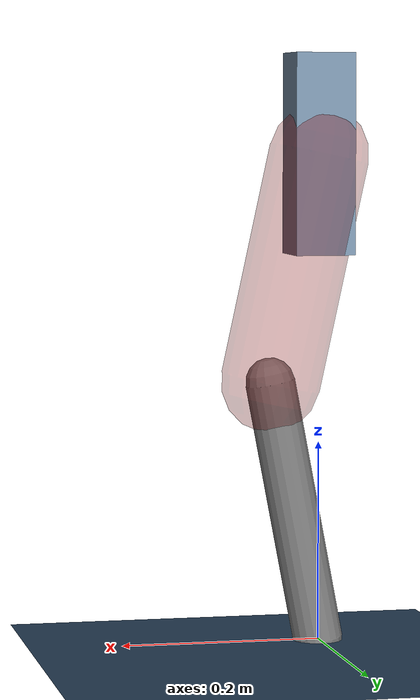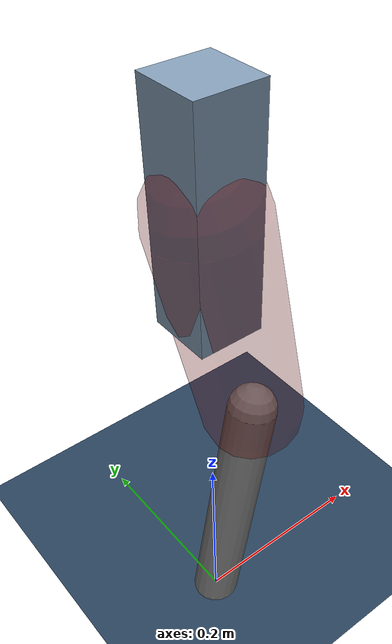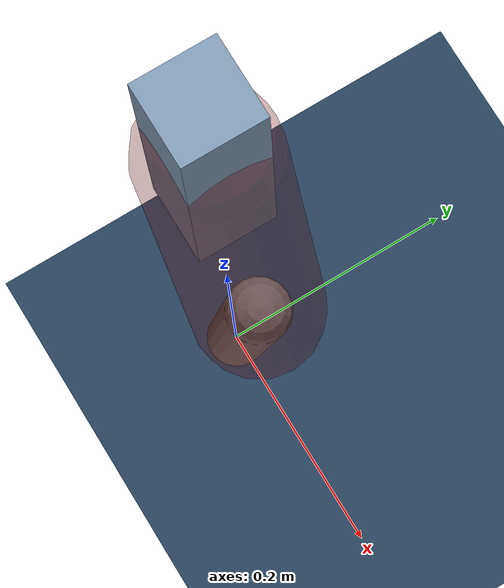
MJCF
<mujoco model="Hopper2D">
	<compiler inertiafromgeom="true" angle="radian" />
	<option timestep="0.001" integrator="implicit" cone="elliptic" solver="Newton" tolerance="1e-10" />

	<default>
		<geom contype="1" conaffinity="1" condim="3" friction="2 0.005 0.0001" solref="0.005 1" />
		<joint limited="true" damping="0.1" />
	</default>

	<asset>
		<texture name="skybox" type="skybox" builtin="gradient" rgb1=".4 .6 .8" rgb2="0 0 0" width="800" height="800" />
		<texture name="grid" type="2d" builtin="checker" rgb1=".1 .2 .3" rgb2=".2 .3 .4" width="300" height="300" mark="edge" markrgb=".2 .3 .4" />
		<material name="ground" texture="grid" texrepeat="1 1" texuniform="true" reflectance="0.1" />
		<material name="leg" rgba="0.5 0.6 0.7 1" />
	</asset>

	<worldbody>

		<geom name="floor" type="plane" size="5 5 0.25" material="ground" />

		<light directional="false" diffuse="0.8 0.8 0.8" specular="0.3 0.3 0.3" pos="0 0 2" dir="0 0 -1" />
		<light mode="targetbodycom" target="base" directional="false" diffuse="0.8 0.8 0.8" specular="0.3 0.3 0.3" pos="0 0 2" dir="0 0 -1" />

		<camera name="fixed" pos="0 -2 1" xyaxes="1 0 0 0 0 1" />
		<camera name="tracking" mode="trackcom" pos="0 -3 1" />

		<body name="root" pos="0 0 0.4885823532625596">
			<joint name="slide_x" type="slide" axis="1 0 0" range="-100 100" />
			<joint name="slide_z" type="slide" axis="0 0 1" range="0 10" />

			<body name="base" pos="0 0 0">
				<geom name="torso" type="box" size="0.03 0.03 0.1" mass="1.714" material="leg" />

				<body name="link1" pos="0 0 0" euler="0 1.35646973645788 0">
					<joint type="hinge" axis="0 -1 0" pos="0 0 0" name="hinge1" limited="true" range="-3.14 3.14" stiffness="0" damping="0.1" />
					<geom name="thigh" type="capsule" fromto="0 0 0 0.23305446848608494 0 0" size="0.05" rgba="0.5 0 0 0.3" mass="0.8128361712152123" />

					<body name="link2" pos="0.23305446848608494 0 0" euler="0 0.40210627048141845 0">
						<joint type="hinge" axis="0 -1 0" pos="0 0 0" name="hinge2" limited="true" range="-3.14 3.14" stiffness="0" damping="0.1" />
						<geom name="shank" type="capsule" fromto="0 0 0 0.2655278847764747 0 0" size="0.025" mass="0.4553223078211798" />

					</body>
				</body>
			</body>
		</body>
	</worldbody>

	<actuator>
		<motor name="torque1" joint="hinge1" ctrlrange="-31.542210930979817 31.542210930979817" ctrllimited="true" gear="1" />
		<motor name="torque2" joint="hinge2" ctrlrange="-36.575996370814266 36.575996370814266" ctrllimited="true" gear="1" />
	</actuator>
</mujoco>
